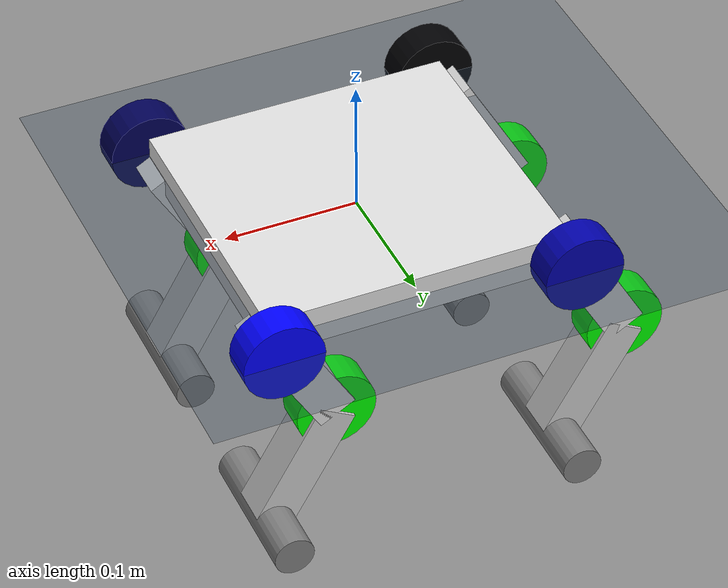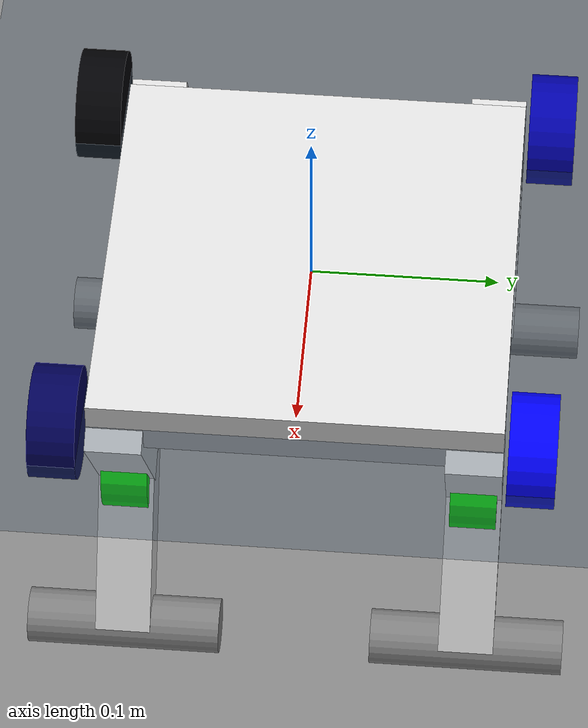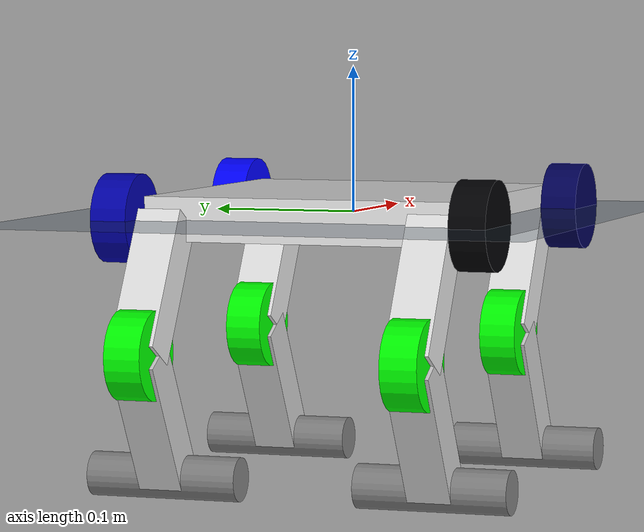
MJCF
<?xml version="1.0" ?>
<!-- |    This document was autogenerated by xacro from doq.xacro                      | -->
<!-- |    EDITING THIS FILE BY HAND IS NOT RECOMMENDED                                 | -->
<mujoco model="twist">
  <!-- XACRO PARAMETERS -->
  <!-- rando stuff -->
  <!-- Body parameters -->
  <!--INERTIA PROB TOO HIGH, maybe make this a pointish mass-->
  <!-- but is it tho -->
  <!-- update -->
  <!-- but is it tho -->
  <!--GTT: Grand Theft Toe-->
  <!-- XACRO MACROS -->
  <compiler angle="radian" autolimits="true"/>
  <option gravity="0 0 -9.81" timestep="0.001">
    <!-- https://github.com/deepmind/mujoco/issues/941 -->
  </option>
  <default>
    <geom conaffinity="0" contype="4"/>
  </default>
  <asset>
    <texture builtin="gradient" height="512" rgb1="0.3 0.5 0.7" rgb2="0 0 0" type="skybox" width="512"/>
    <texture builtin="checker" height="512" mark="cross" markrgb=".8 .8 .8" name="texplane" rgb1=".2 .3 .4" rgb2=".1 0.15 0.2" type="2d" width="512"/>
    <texture builtin="flat" height="1278" mark="cross" markrgb="1 1 1" name="texgeom" random="0.01" rgb1="0.8 0.6 0.4" rgb2="0.8 0.6 0.4" type="cube" width="127"/>
    <material name="matplane" reflectance="0.3" texrepeat="1 1" texture="texplane" texuniform="true"/>
    <material name="matgeom" rgba="0.8 0.6 .4 1" texture="texgeom" texuniform="true"/>
  </asset>
  <worldbody>
    <geom conaffinity="4" contype="2" material="matplane" name="floor" pos="0 0 0" size="0 0 .25" type="plane"/>
    <light cutoff="100" diffuse="1 1 1" dir="-0 0 -1.3" directional="true" exponent="1" pos="0 0 1.3" specular=".1 .1 .1"/>
    <body name="body">
      <joint name="FLOATING" type="free"/>
	  <geom mass="0.546048" name="kinegamiAndBoards" pos="0 0 0" rgba="0.88 0.88 0.88 1.0" size="0.114326 0.108784 0.015000" type="box"/>
      <!-- front_back_sign:=1 left_right_sign:=1" -->
	  <body name="hip_0" pos="0.112163 0.093892 0.0">
        <geom mass="0.21" name="hip_motor_0" pos="0 0.03 0" quat="0.707107 0.707107 0 0" rgba="0 0 1.0 1" size="0.03 0.0125" type="cylinder"/>
        <body name="thigh_0" pos="0 0 0" quat=" 0.9659258 0 0.258819 0">
          <joint axis="0 1 0" damping="0.01" name="HIP0" pos="0 0 0" range="-1.5707963 1.5707963"/>
	  	<geom mass="0.0" name="thigh_0" pos="0 0 -0.050000" rgba="0.88 0.88 0.88 1.0" size=" 0.015 0.015 0.050000" type="box"/>
	  	<geom mass="0.21" name="knee_motor_0" pos="0 0 -0.100000" quat="0.707107 0.707107 0 0" rgba="0 1.0 0 1" size="0.03 0.0125" type="cylinder"/>
	  	<body name="shin_0" pos="0 0 -0.100000" quat="0.86603 0 -0.5 0">
            <joint axis="0 1 0" damping="0.01" name="KNEE0" pos="0 0 0" range="-1.5707963 1.5707963"/>
	  		<geom mass="0.0" name="shin_0" pos="0 0 -0.050000" rgba="0.8 0.8 0.8 1.0" size="0.015 0.015 0.050000" type="box"/>
	  		<geom contype="4" mass="0.03" name="toe_0" pos="0 0 -0.100000" quat="0.707107 0.707107 0 0" rgba="0.5 0.5 0.5 1.0" size="0.015 0.0525" type="cylinder"/>
          </body>
        </body>
      </body>
      <!-- front_back_sign:=1 left_right_sign:=1" -->
	  <body name="hip_1" pos="-0.112163 0.093892 0.0">
        <geom mass="0.21" name="hip_motor_1" pos="0 0.03 0" quat="0.707107 0.707107 0 0" rgba="0 0 0.6699999999999999 1" size="0.03 0.0125" type="cylinder"/>
        <body name="thigh_1" pos="0 0 0" quat=" 0.9659258 0 0.258819 0">
          <joint axis="0 1 0" damping="0.01" name="HIP1" pos="0 0 0" range="-1.5707963 1.5707963"/>
	  	<geom mass="0.0" name="thigh_1" pos="0 0 -0.050000" rgba="0.88 0.88 0.88 1.0" size=" 0.015 0.015 0.050000" type="box"/>
	  	<geom mass="0.21" name="knee_motor_1" pos="0 0 -0.100000" quat="0.707107 0.707107 0 0" rgba="0 1.0 0 1" size="0.03 0.0125" type="cylinder"/>
	  	<body name="shin_1" pos="0 0 -0.100000" quat="0.86603 0 -0.5 0">
            <joint axis="0 1 0" damping="0.01" name="KNEE1" pos="0 0 0" range="-1.5707963 1.5707963"/>
	  		<geom mass="0.0" name="shin_1" pos="0 0 -0.050000" rgba="0.8 0.8 0.8 1.0" size="0.015 0.015 0.050000" type="box"/>
	  		<geom contype="4" mass="0.03" name="toe_1" pos="0 0 -0.100000" quat="0.707107 0.707107 0 0" rgba="0.5 0.5 0.5 1.0" size="0.015 0.0525" type="cylinder"/>
          </body>
        </body>
      </body>
      <!-- front_back_sign:=1 left_right_sign:=1" -->
	  <body name="hip_2" pos="0.112163 -0.093892 0.0">
        <geom mass="0.21" name="hip_motor_2" pos="0 -0.03 0" quat="0.707107 0.707107 0 0" rgba="0 0 0.33999999999999997 1" size="0.03 0.0125" type="cylinder"/>
        <body name="thigh_2" pos="0 0 0" quat=" 0.9659258 0 0.258819 0">
          <joint axis="0 1 0" damping="0.01" name="HIP2" pos="0 0 0" range="-1.5707963 1.5707963"/>
	  	<geom mass="0.0" name="thigh_2" pos="0 0 -0.050000" rgba="0.88 0.88 0.88 1.0" size=" 0.015 0.015 0.050000" type="box"/>
	  	<geom mass="0.21" name="knee_motor_2" pos="0 0 -0.100000" quat="0.707107 0.707107 0 0" rgba="0 1.0 0 1" size="0.03 0.0125" type="cylinder"/>
	  	<body name="shin_2" pos="0 0 -0.100000" quat="0.86603 0 -0.5 0">
            <joint axis="0 1 0" damping="0.01" name="KNEE2" pos="0 0 0" range="-1.5707963 1.5707963"/>
	  		<geom mass="0.0" name="shin_2" pos="0 0 -0.050000" rgba="0.8 0.8 0.8 1.0" size="0.015 0.015 0.050000" type="box"/>
	  		<geom contype="4" mass="0.03" name="toe_2" pos="0 0 -0.100000" quat="0.707107 0.707107 0 0" rgba="0.5 0.5 0.5 1.0" size="0.015 0.0525" type="cylinder"/>
          </body>
        </body>
      </body>
      <!-- front_back_sign:=1 left_right_sign:=1" -->
	  <body name="hip_3" pos="-0.112163 -0.093892 0.0">
        <geom mass="0.21" name="hip_motor_3" pos="0 -0.03 0" quat="0.707107 0.707107 0 0" rgba="0 0 0.010000000000000009 1" size="0.03 0.0125" type="cylinder"/>
        <body name="thigh_3" pos="0 0 0" quat=" 0.9659258 0 0.258819 0">
          <joint axis="0 1 0" damping="0.01" name="HIP3" pos="0 0 0" range="-1.5707963 1.5707963"/>
	  	<geom mass="0.0" name="thigh_3" pos="0 0 -0.050000" rgba="0.88 0.88 0.88 1.0" size=" 0.015 0.015 0.050000" type="box"/>
	  	<geom mass="0.21" name="knee_motor_3" pos="0 0 -0.100000" quat="0.707107 0.707107 0 0" rgba="0 1.0 0 1" size="0.03 0.0125" type="cylinder"/>
	  	<body name="shin_3" pos="0 0 -0.100000" quat="0.86603 0 -0.5 0">
            <joint axis="0 1 0" damping="0.01" name="KNEE3" pos="0 0 0" range="-1.5707963 1.5707963"/>
	  		<geom mass="0.0" name="shin_3" pos="0 0 -0.050000" rgba="0.8 0.8 0.8 1.0" size="0.015 0.015 0.050000" type="box"/>
	  		<geom contype="4" mass="0.03" name="toe_3" pos="0 0 -0.100000" quat="0.707107 0.707107 0 0" rgba="0.5 0.5 0.5 1.0" size="0.015 0.0525" type="cylinder"/>
          </body>
        </body>
      </body>
      <site name="IMU"/>
    </body>
  </worldbody>
  <actuator>
    <motor joint="HIP0" name="HIP0_act"/>
    <motor joint="KNEE0" name="KNEE0_act"/>
    <motor joint="HIP1" name="HIP1_act"/>
    <motor joint="KNEE1" name="KNEE1_act"/>
    <motor joint="HIP2" name="HIP2_act"/>
    <motor joint="KNEE2" name="KNEE2_act"/>
    <motor joint="HIP3" name="HIP3_act"/>
    <motor joint="KNEE3" name="KNEE3_act"/>
  </actuator>
  <sensor>
    <accelerometer name="ACCEL" site="IMU"/>
    <gyro name="GYRO" site="IMU"/>
    <framequat name="QUAT" objname="IMU" objtype="site"/>
  </sensor>
</mujoco>
